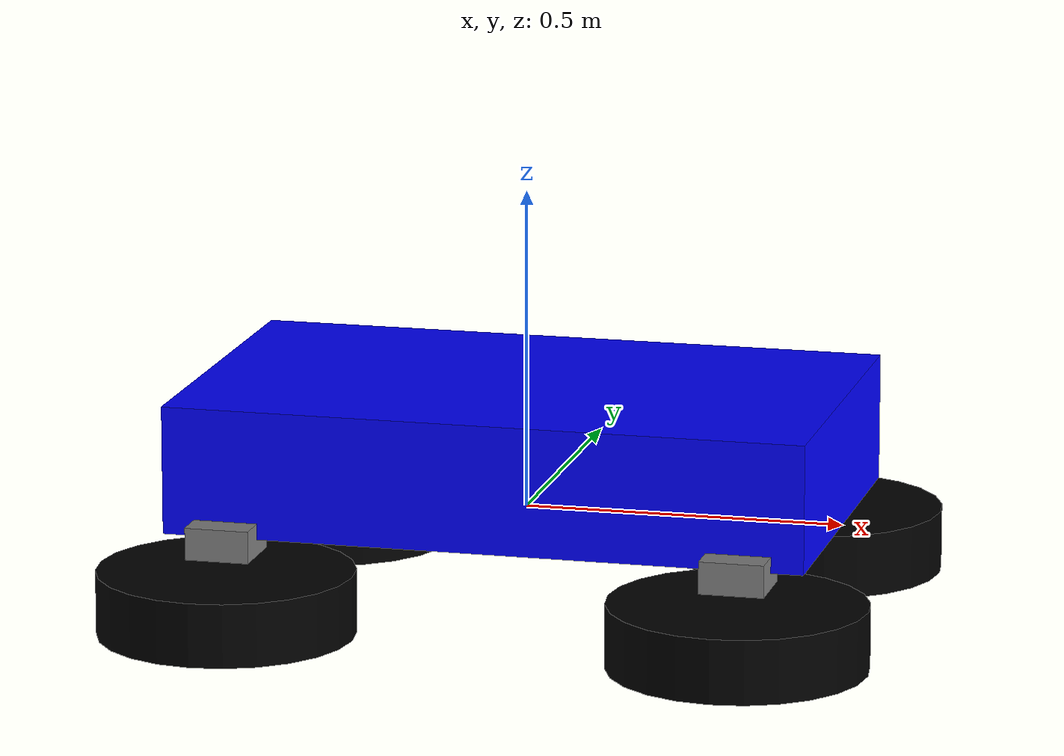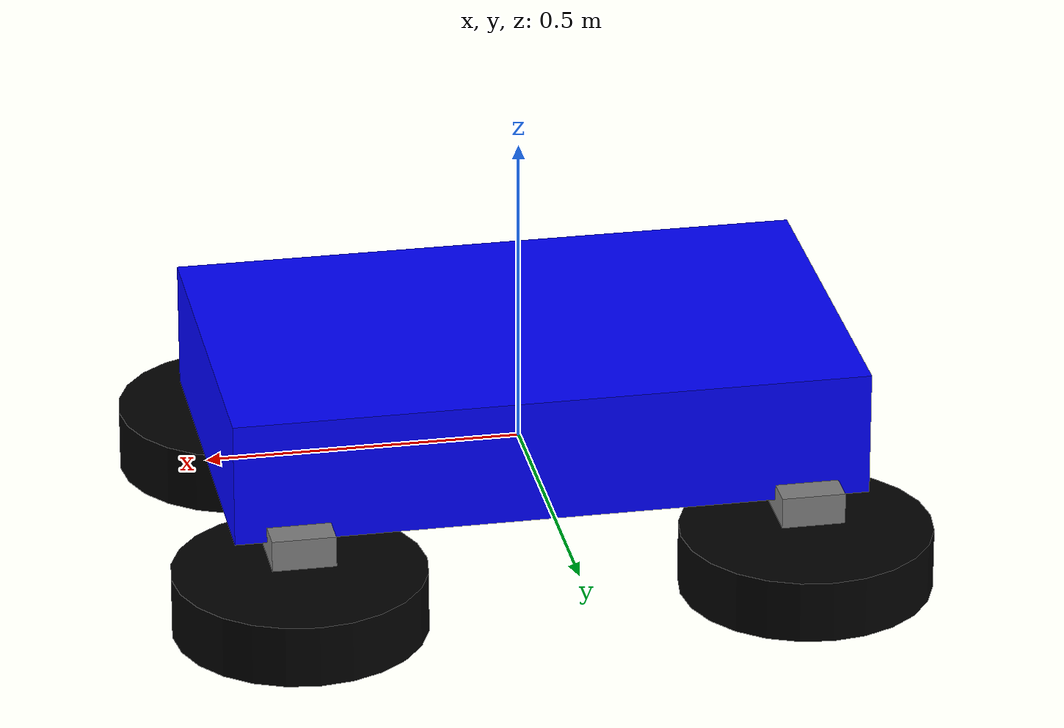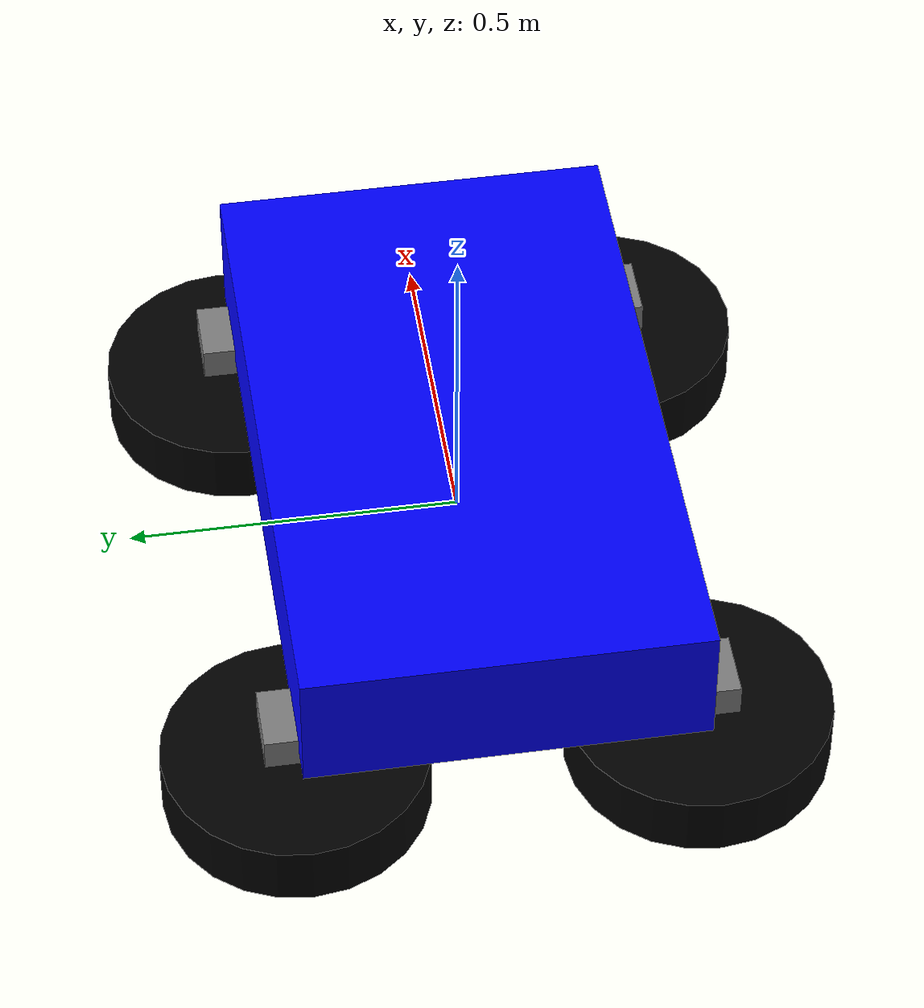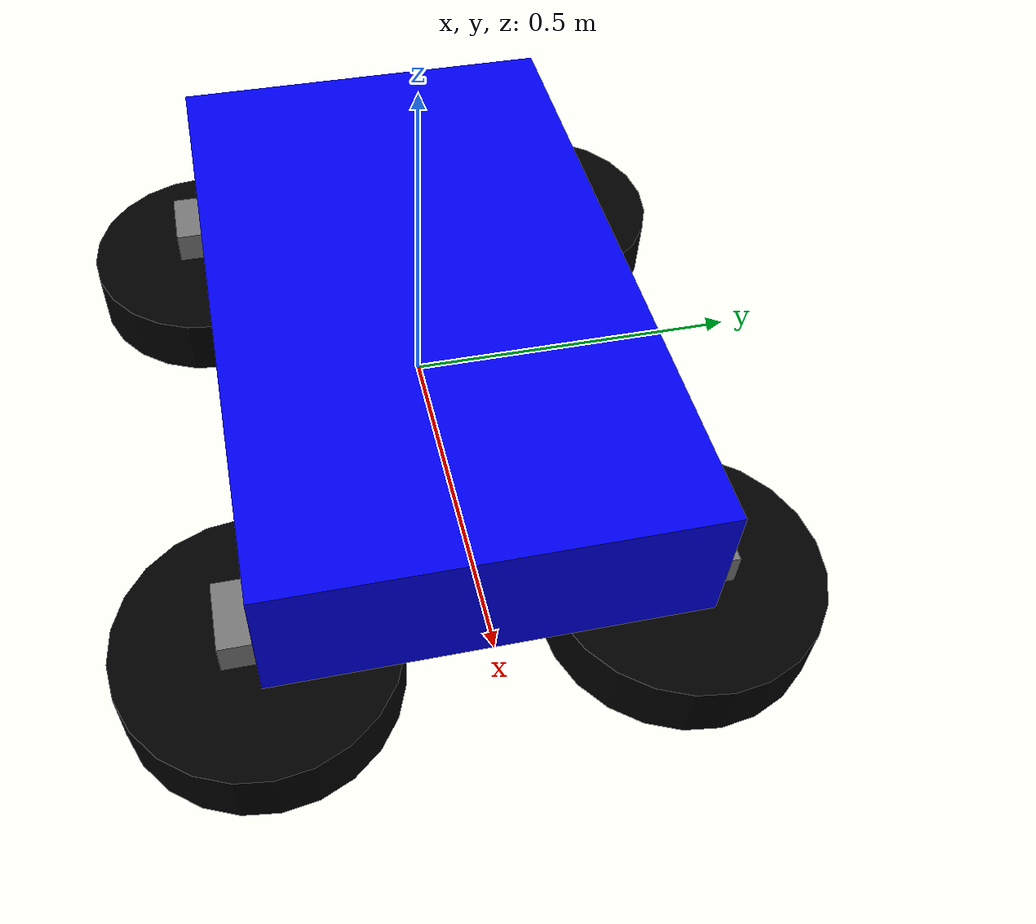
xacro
<?xml version="1.0"?>
<robot xmlns:xacro="http://www.ros.org/wiki/xacro" name="farmbot">

  <xacro:property name="robot_name" value="farmbot" />

  <!-- Base link -->
  <link name="${robot_name}_base_link">
    <visual>
      <origin xyz="0 0 0.1" rpy="0 0 0"/>
      <geometry>
        <box size="1.0 0.6 0.2"/>
      </geometry>
      <material name="blue">
        <color rgba="0.0 0.0 1.0 1.0"/>
      </material>
    </visual>
    <collision>
      <origin xyz="0 0 0.1" rpy="0 0 0"/>
      <geometry>
        <box size="1.0 0.6 0.2"/>
      </geometry>
    </collision>
    <inertial>
      <mass value="50.0"/>
      <inertia ixx="1.0" ixy="0.0" ixz="0.0" iyy="1.0" iyz="0.0" izz="1.0"/>
    </inertial>
  </link>

  <!-- Wheel macro -->
  <xacro:macro name="wheel" params="name x y z parent">
    <link name="${robot_name}_${name}_link">
      <visual>
        <geometry>
          <cylinder radius="0.2" length="0.1"/>
        </geometry>
        <material name="black">
          <color rgba="0.0 0.0 0.0 1.0"/>
        </material>
      </visual>
      <collision>
        <geometry>
          <cylinder radius="0.2" length="0.1"/>
        </geometry>
      </collision>
      <inertial>
        <mass value="5.0"/>
        <inertia ixx="0.1" ixy="0.0" ixz="0.0" iyy="0.1" iyz="0.0" izz="0.1"/>
      </inertial>
    </link>

    <joint name="${robot_name}_${name}_joint" type="continuous">
      <parent link="${parent}"/>
      <child link="${robot_name}_${name}_link"/>
      <origin xyz="${x} ${y} ${z}" rpy="0 0 0"/>
      <axis xyz="0 0 1"/>
    </joint>
  </xacro:macro>

  <!-- Steerable wheel macro -->
  <xacro:macro name="steer_wheel" params="name x y z parent">
    <link name="${robot_name}_${name}_steer_link">
      <visual>
        <geometry>
          <box size="0.1 0.1 0.05"/>
        </geometry>
        <material name="gray">
          <color rgba="0.5 0.5 0.5 1.0"/>
        </material>
      </visual>
      <collision>
        <geometry>
          <box size="0.1 0.1 0.05"/>
        </geometry>
      </collision>
      <inertial>
        <mass value="1.0"/>
        <inertia ixx="0.01" ixy="0.0" ixz="0.0" iyy="0.01" iyz="0.0" izz="0.01"/>
      </inertial>
    </link>

    <joint name="${robot_name}_${name}_steer_joint" type="revolute">
      <parent link="${parent}"/>
      <child link="${robot_name}_${name}_steer_link"/>
      <origin xyz="${x} ${y} ${z}" rpy="0 0 0"/>
      <axis xyz="0 0 1"/>
      <limit lower="-1.57" upper="1.57" effort="100" velocity="1.0"/>
    </joint>

    <xacro:wheel name="${name}_wheel" x="0" y="0" z="-0.1" parent="${robot_name}_${name}_steer_link"/>
  </xacro:macro>

  <!-- Four steerable wheels -->
  <xacro:steer_wheel name="front_left" x="0.4" y="0.3" z="0" parent="${robot_name}_base_link"/>
  <xacro:steer_wheel name="front_right" x="0.4" y="-0.3" z="0" parent="${robot_name}_base_link"/>
  <xacro:steer_wheel name="rear_left" x="-0.4" y="0.3" z="0" parent="${robot_name}_base_link"/>
  <xacro:steer_wheel name="rear_right" x="-0.4" y="-0.3" z="0" parent="${robot_name}_base_link"/>

</robot>
